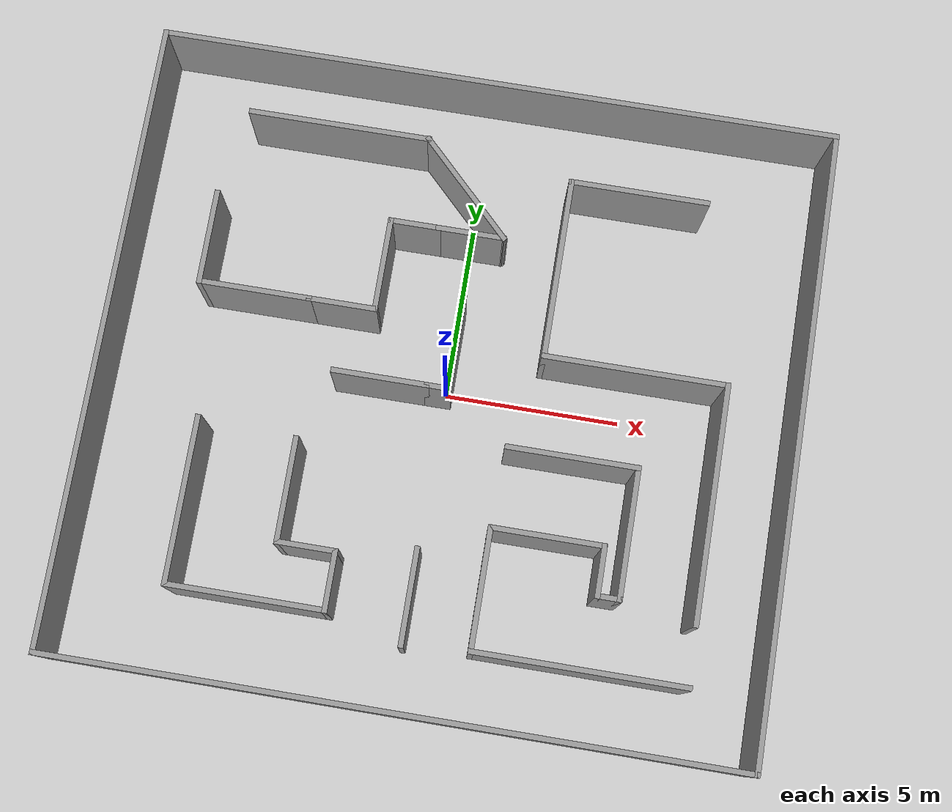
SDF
<sdf version="1.6">
 <world name="default">
  <light name="sun" type="directional">
   <pose>0 0 10 0 -0 0</pose>
   <diffuse>0.8 0.8 0.8 1</diffuse>
   <specular>0.2 0.2 0.2 1</specular>
   <attenuation>
    <range>1000</range>
    <constant>0.9</constant>
    <linear>0.01</linear>
    <quadratic>0.001</quadratic>
   </attenuation>
   <direction>-0.5 0.1 -0.9</direction>
   <spot><inner_angle>0</inner_angle><outer_angle>0</outer_angle><falloff>0</falloff></spot>
  </light>
  <model name="ground_plane">
   <static>1</static>
   <link name="link">
    <collision name="collision">
     <geometry><plane><normal>0 0 1</normal><size>100 100</size></plane></geometry>
     <surface>
      <contact><collide_bitmask>65535</collide_bitmask></contact>
      <friction><ode><mu>100</mu><mu2>50</mu2></ode></friction>
     </surface>
    </collision>
    <visual name="visual">
     <cast_shadows>0</cast_shadows>
     <geometry><plane><normal>0 0 1</normal><size>100 100</size></plane></geometry>
     <material>
      <script><uri>file://media/materials/scripts/gazebo.material</uri><name>Gazebo/Grey</name></script>
     </material>
    </visual>
   </link>
  </model>
  <gravity>0 0 -9.8</gravity>
  <magnetic_field>6e-06 2.3e-05 -4.2e-05</magnetic_field>
  <atmosphere type="adiabatic"/>
  <physics type="ode">
   <max_step_size>0.001</max_step_size>
   <real_time_factor>1</real_time_factor>
   <real_time_update_rate>1000</real_time_update_rate>
  </physics>
  <scene><ambient>0.4 0.4 0.4 1</ambient><background>0.7 0.7 0.7 1</background><shadows>1</shadows></scene>
  <spherical_coordinates>
   <surface_model>EARTH_WGS84</surface_model>
   <latitude_deg>0</latitude_deg>
   <longitude_deg>0</longitude_deg>
   <elevation>0</elevation>
   <heading_deg>0</heading_deg>
  </spherical_coordinates>
  <model name="testmap.world">
   <pose>0.092069 -0.22755 0 0 -0 0</pose>
   <link name="Wall_0">
    <collision name="Wall_0_Collision">
     <geometry><box><size>18 0.15 2.5</size></box></geometry>
     <pose>0 0 1.25 0 -0 0</pose>
    </collision>
    <visual name="Wall_0_Visual">
     <pose>0 0 1.25 0 -0 0</pose>
     <geometry><box><size>18 0.15 2.5</size></box></geometry>
     <material>
      <script><uri>file://media/materials/scripts/gazebo.material</uri><name>Gazebo/Grey</name></script>
      <ambient>1 1 1 1</ambient>
     </material>
     <meta><layer>0</layer></meta>
    </visual>
    <pose>-9.675 0 0 0 -0 -1.5708</pose>
   </link>
   <link name="Wall_10">
    <collision name="Wall_10_Collision">
     <geometry><box><size>1.75 0.15 2.5</size></box></geometry>
     <pose>0 0 1.25 0 -0 0</pose>
    </collision>
    <visual name="Wall_10_Visual">
     <pose>0 0 1.25 0 -0 0</pose>
     <geometry><box><size>1.75 0.15 2.5</size></box></geometry>
     <material>
      <script><uri>file://media/materials/scripts/gazebo.material</uri><name>Gazebo/Grey</name></script>
      <ambient>1 1 1 1</ambient>
     </material>
     <meta><layer>0</layer></meta>
    </visual>
    <pose>-3.03513 -4.97207 0 0 -0 3.14159</pose>
   </link>
   <link name="Wall_11">
    <collision name="Wall_11_Collision">
     <geometry><box><size>3 0.15 2.5</size></box></geometry>
     <pose>0 0 1.25 0 -0 0</pose>
    </collision>
    <visual name="Wall_11_Visual">
     <pose>0 0 1.25 0 -0 0</pose>
     <geometry><box><size>3 0.15 2.5</size></box></geometry>
     <material>
      <script><uri>file://media/materials/scripts/gazebo.material</uri><name>Gazebo/Grey</name></script>
      <ambient>1 1 1 1</ambient>
     </material>
     <meta><layer>0</layer></meta>
    </visual>
    <pose>-3.83513 -3.54707 0 0 -0 1.5708</pose>
   </link>
   <link name="Wall_13">
    <collision name="Wall_13_Collision">
     <geometry><box><size>5.25 0.15 2.5</size></box></geometry>
     <pose>0 0 1.25 0 -0 0</pose>
    </collision>
    <visual name="Wall_13_Visual">
     <pose>0 0 1.25 0 -0 0</pose>
     <geometry><box><size>5.25 0.15 2.5</size></box></geometry>
     <material>
      <script><uri>file://media/materials/scripts/gazebo.material</uri><name>Gazebo/Grey</name></script>
      <ambient>1 1 1 1</ambient>
     </material>
     <meta><layer>0</layer></meta>
    </visual>
    <pose>-4.2462 6.96333 0 0 -0 0</pose>
   </link>
   <link name="Wall_14">
    <collision name="Wall_14_Collision">
     <geometry><box><size>3.75 0.15 2.5</size></box></geometry>
     <pose>0 0 1.25 0 -0 0</pose>
    </collision>
    <visual name="Wall_14_Visual">
     <pose>0 0 1.25 0 -0 0</pose>
     <geometry><box><size>3.75 0.15 2.5</size></box></geometry>
     <material>
      <script><uri>file://media/materials/scripts/gazebo.material</uri><name>Gazebo/Grey</name></script>
      <ambient>1 1 1 1</ambient>
     </material>
     <meta><layer>0</layer></meta>
    </visual>
    <pose>-0.423409 5.69054 0 0 -0 -0.785398</pose>
   </link>
   <link name="Wall_15">
    <collision name="Wall_15_Collision">
     <geometry><box><size>2 0.15 2.5</size></box></geometry>
     <pose>0 0 1.25 0 -0 0</pose>
    </collision>
    <visual name="Wall_15_Visual">
     <pose>0 0 1.25 0 -0 0</pose>
     <geometry><box><size>2 0.15 2.5</size></box></geometry>
     <material>
      <script><uri>file://media/materials/scripts/gazebo.material</uri><name>Gazebo/Grey</name></script>
      <ambient>1 1 1 1</ambient>
     </material>
     <meta><layer>0</layer></meta>
    </visual>
    <pose>-0.075617 4.41775 0 0 -0 3.14159</pose>
   </link>
   <link name="Wall_16">
    <collision name="Wall_16_Collision">
     <geometry><box><size>1.5 0.15 2.5</size></box></geometry>
     <pose>0 0 1.25 0 -0 0</pose>
    </collision>
    <visual name="Wall_16_Visual">
     <pose>0 0 1.25 0 -0 0</pose>
     <geometry><box><size>1.5 0.15 2.5</size></box></geometry>
     <material>
      <script><uri>file://media/materials/scripts/gazebo.material</uri><name>Gazebo/Grey</name></script>
      <ambient>1 1 1 1</ambient>
     </material>
     <meta><layer>0</layer></meta>
    </visual>
    <pose>-1.67562 4.41775 0 0 -0 3.14159</pose>
   </link>
   <link name="Wall_17">
    <collision name="Wall_17_Collision">
     <geometry><box><size>2.75 0.15 2.5</size></box></geometry>
     <pose>0 0 1.25 0 -0 0</pose>
    </collision>
    <visual name="Wall_17_Visual">
     <pose>0 0 1.25 0 -0 0</pose>
     <geometry><box><size>2.75 0.15 2.5</size></box></geometry>
     <material>
      <script><uri>file://media/materials/scripts/gazebo.material</uri><name>Gazebo/Grey</name></script>
      <ambient>1 1 1 1</ambient>
     </material>
     <meta><layer>0</layer></meta>
    </visual>
    <pose>-2.35062 3.11775 0 0 -0 -1.5708</pose>
   </link>
   <link name="Wall_18">
    <collision name="Wall_18_Collision">
     <geometry><box><size>2 0.15 2.5</size></box></geometry>
     <pose>0 0 1.25 0 -0 0</pose>
    </collision>
    <visual name="Wall_18_Visual">
     <pose>0 0 1.25 0 -0 0</pose>
     <geometry><box><size>2 0.15 2.5</size></box></geometry>
     <material>
      <script><uri>file://media/materials/scripts/gazebo.material</uri><name>Gazebo/Grey</name></script>
      <ambient>1 1 1 1</ambient>
     </material>
     <meta><layer>0</layer></meta>
    </visual>
    <pose>-3.27562 1.81775 0 0 -0 3.14159</pose>
   </link>
   <link name="Wall_19">
    <collision name="Wall_19_Collision">
     <geometry><box><size>3.25 0.15 2.5</size></box></geometry>
     <pose>0 0 1.25 0 -0 0</pose>
    </collision>
    <visual name="Wall_19_Visual">
     <pose>0 0 1.25 0 -0 0</pose>
     <geometry><box><size>3.25 0.15 2.5</size></box></geometry>
     <material>
      <script><uri>file://media/materials/scripts/gazebo.material</uri><name>Gazebo/Grey</name></script>
      <ambient>1 1 1 1</ambient>
     </material>
     <meta><layer>0</layer></meta>
    </visual>
    <pose>-5.75062 1.81775 0 0 -0 3.14159</pose>
   </link>
   <link name="Wall_20">
    <collision name="Wall_20_Collision">
     <geometry><box><size>2.75 0.15 2.5</size></box></geometry>
     <pose>0 0 1.25 0 -0 0</pose>
    </collision>
    <visual name="Wall_20_Visual">
     <pose>0 0 1.25 0 -0 0</pose>
     <geometry><box><size>2.75 0.15 2.5</size></box></geometry>
     <material>
      <script><uri>file://media/materials/scripts/gazebo.material</uri><name>Gazebo/Grey</name></script>
      <ambient>1 1 1 1</ambient>
     </material>
     <meta><layer>0</layer></meta>
    </visual>
    <pose>-7.30062 3.11775 0 0 -0 1.5708</pose>
   </link>
   <link name="Wall_22">
    <collision name="Wall_22_Collision">
     <geometry><box><size>6 0.15 2.5</size></box></geometry>
     <pose>0 0 1.25 0 -0 0</pose>
    </collision>
    <visual name="Wall_22_Visual">
     <pose>0 0 1.25 0 -0 0</pose>
     <geometry><box><size>6 0.15 2.5</size></box></geometry>
     <material>
      <script><uri>file://media/materials/scripts/gazebo.material</uri><name>Gazebo/Grey</name></script>
      <ambient>1 1 1 1</ambient>
     </material>
     <meta><layer>0</layer></meta>
    </visual>
    <pose>4.70209 -7.00264 0 0 -0 3.14159</pose>
   </link>
   <link name="Wall_23">
    <collision name="Wall_23_Collision">
     <geometry><box><size>3.5 0.15 2.5</size></box></geometry>
     <pose>0 0 1.25 0 -0 0</pose>
    </collision>
    <visual name="Wall_23_Visual">
     <pose>0 0 1.25 0 -0 0</pose>
     <geometry><box><size>3.5 0.15 2.5</size></box></geometry>
     <material>
      <script><uri>file://media/materials/scripts/gazebo.material</uri><name>Gazebo/Grey</name></script>
      <ambient>1 1 1 1</ambient>
     </material>
     <meta><layer>0</layer></meta>
    </visual>
    <pose>1.77709 -5.32764 0 0 -0 1.5708</pose>
   </link>
   <link name="Wall_24">
    <collision name="Wall_24_Collision">
     <geometry><box><size>3.25 0.15 2.5</size></box></geometry>
     <pose>0 0 1.25 0 -0 0</pose>
    </collision>
    <visual name="Wall_24_Visual">
     <pose>0 0 1.25 0 -0 0</pose>
     <geometry><box><size>3.25 0.15 2.5</size></box></geometry>
     <material>
      <script><uri>file://media/materials/scripts/gazebo.material</uri><name>Gazebo/Grey</name></script>
      <ambient>1 1 1 1</ambient>
     </material>
     <meta><layer>0</layer></meta>
    </visual>
    <pose>3.32709 -3.65264 0 0 -0 0</pose>
   </link>
   <link name="Wall_25">
    <collision name="Wall_25_Collision">
     <geometry><box><size>1.5 0.15 2.5</size></box></geometry>
     <pose>0 0 1.25 0 -0 0</pose>
    </collision>
    <visual name="Wall_25_Visual">
     <pose>0 0 1.25 0 -0 0</pose>
     <geometry><box><size>1.5 0.15 2.5</size></box></geometry>
     <material>
      <script><uri>file://media/materials/scripts/gazebo.material</uri><name>Gazebo/Grey</name></script>
      <ambient>1 1 1 1</ambient>
     </material>
     <meta><layer>0</layer></meta>
    </visual>
    <pose>4.87709 -4.32764 0 0 -0 -1.5708</pose>
   </link>
   <link name="Wall_26">
    <collision name="Wall_26_Collision">
     <geometry><box><size>0.75 0.15 2.5</size></box></geometry>
     <pose>0 0 1.25 0 -0 0</pose>
    </collision>
    <visual name="Wall_26_Visual">
     <pose>0 0 1.25 0 -0 0</pose>
     <geometry><box><size>0.75 0.15 2.5</size></box></geometry>
     <material>
      <script><uri>file://media/materials/scripts/gazebo.material</uri><name>Gazebo/Grey</name></script>
      <ambient>1 1 1 1</ambient>
     </material>
     <meta><layer>0</layer></meta>
    </visual>
    <pose>5.17709 -5.00264 0 0 -0 0</pose>
   </link>
   <link name="Wall_27">
    <collision name="Wall_27_Collision">
     <geometry><box><size>3.75 0.15 2.5</size></box></geometry>
     <pose>0 0 1.25 0 -0 0</pose>
    </collision>
    <visual name="Wall_27_Visual">
     <pose>0 0 1.25 0 -0 0</pose>
     <geometry><box><size>3.75 0.15 2.5</size></box></geometry>
     <material>
      <script><uri>file://media/materials/scripts/gazebo.material</uri><name>Gazebo/Grey</name></script>
      <ambient>1 1 1 1</ambient>
     </material>
     <meta><layer>0</layer></meta>
    </visual>
    <pose>5.47709 -3.20264 0 0 -0 1.5708</pose>
   </link>
   <link name="Wall_28">
    <collision name="Wall_28_Collision">
     <geometry><box><size>3.75 0.15 2.5</size></box></geometry>
     <pose>0 0 1.25 0 -0 0</pose>
    </collision>
    <visual name="Wall_28_Visual">
     <pose>0 0 1.25 0 -0 0</pose>
     <geometry><box><size>3.75 0.15 2.5</size></box></geometry>
     <material>
      <script><uri>file://media/materials/scripts/gazebo.material</uri><name>Gazebo/Grey</name></script>
      <ambient>1 1 1 1</ambient>
     </material>
     <meta><layer>0</layer></meta>
    </visual>
    <pose>3.67709 -1.40264 0 0 -0 3.14159</pose>
   </link>
   <link name="Wall_3">
    <collision name="Wall_3_Collision">
     <geometry><box><size>19.5 0.15 2.5</size></box></geometry>
     <pose>0 0 1.25 0 -0 0</pose>
    </collision>
    <visual name="Wall_3_Visual">
     <pose>0 0 1.25 0 -0 0</pose>
     <geometry><box><size>19.5 0.15 2.5</size></box></geometry>
     <material>
      <script><uri>file://media/materials/scripts/gazebo.material</uri><name>Gazebo/Grey</name></script>
      <ambient>1 1 1 1</ambient>
     </material>
     <meta><layer>0</layer></meta>
    </visual>
    <pose>0 -8.925 0 0 -0 0</pose>
   </link>
   <link name="Wall_30">
    <collision name="Wall_30_Collision">
     <geometry><box><size>4 0.15 2.5</size></box></geometry>
     <pose>0 0 1.25 0 -0 0</pose>
    </collision>
    <visual name="Wall_30_Visual">
     <pose>0 0 1.25 0 -0 0</pose>
     <geometry><box><size>4 0.15 2.5</size></box></geometry>
     <material>
      <script><uri>file://media/materials/scripts/gazebo.material</uri><name>Gazebo/Grey</name></script>
      <ambient>1 1 1 1</ambient>
     </material>
     <meta><layer>0</layer></meta>
    </visual>
    <pose>4.40048 6.36529 0 0 -0 3.14159</pose>
   </link>
   <link name="Wall_31">
    <collision name="Wall_31_Collision">
     <geometry><box><size>5.25 0.15 2.5</size></box></geometry>
     <pose>0 0 1.25 0 -0 0</pose>
    </collision>
    <visual name="Wall_31_Visual">
     <pose>0 0 1.25 0 -0 0</pose>
     <geometry><box><size>5.25 0.15 2.5</size></box></geometry>
     <material>
      <script><uri>file://media/materials/scripts/gazebo.material</uri><name>Gazebo/Grey</name></script>
      <ambient>1 1 1 1</ambient>
     </material>
     <meta><layer>0</layer></meta>
    </visual>
    <pose>2.47548 3.81529 0 0 -0 -1.5708</pose>
   </link>
   <link name="Wall_32">
    <collision name="Wall_32_Collision">
     <geometry><box><size>5.25 0.15 2.5</size></box></geometry>
     <pose>0 0 1.25 0 -0 0</pose>
    </collision>
    <visual name="Wall_32_Visual">
     <pose>0 0 1.25 0 -0 0</pose>
     <geometry><box><size>5.25 0.15 2.5</size></box></geometry>
     <material>
      <script><uri>file://media/materials/scripts/gazebo.material</uri><name>Gazebo/Grey</name></script>
      <ambient>1 1 1 1</ambient>
     </material>
     <meta><layer>0</layer></meta>
    </visual>
    <pose>5.02548 1.26529 0 0 -0 0</pose>
   </link>
   <link name="Wall_33">
    <collision name="Wall_33_Collision">
     <geometry><box><size>6.75 0.15 2.5</size></box></geometry>
     <pose>0 0 1.25 0 -0 0</pose>
    </collision>
    <visual name="Wall_33_Visual">
     <pose>0 0 1.25 0 -0 0</pose>
     <geometry><box><size>6.75 0.15 2.5</size></box></geometry>
     <material>
      <script><uri>file://media/materials/scripts/gazebo.material</uri><name>Gazebo/Grey</name></script>
      <ambient>1 1 1 1</ambient>
     </material>
     <meta><layer>0</layer></meta>
    </visual>
    <pose>7.57548 -2.03471 0 0 -0 -1.5708</pose>
   </link>
   <link name="Wall_35">
    <collision name="Wall_35_Collision">
     <geometry><box><size>2.75 0.15 2.5</size></box></geometry>
     <pose>0 0 1.25 0 -0 0</pose>
    </collision>
    <visual name="Wall_35_Visual">
     <pose>0 0 1.25 0 -0 0</pose>
     <geometry><box><size>2.75 0.15 2.5</size></box></geometry>
     <material>
      <script><uri>file://media/materials/scripts/gazebo.material</uri><name>Gazebo/Grey</name></script>
      <ambient>1 1 1 1</ambient>
     </material>
     <meta><layer>0</layer></meta>
    </visual>
    <pose>-1.87279 -0.072421 0 0 -0 0</pose>
   </link>
   <link name="Wall_36">
    <collision name="Wall_36_Collision">
     <geometry><box><size>0.75 0.15 2.5</size></box></geometry>
     <pose>0 0 1.25 0 -0 0</pose>
    </collision>
    <visual name="Wall_36_Visual">
     <pose>0 0 1.25 0 -0 0</pose>
     <geometry><box><size>0.75 0.15 2.5</size></box></geometry>
     <material>
      <script><uri>file://media/materials/scripts/gazebo.material</uri><name>Gazebo/Grey</name></script>
      <ambient>1 1 1 1</ambient>
     </material>
     <meta><layer>0</layer></meta>
    </visual>
    <pose>-0.272789 -0.072421 0 0 -0 0</pose>
   </link>
   <link name="Wall_37">
    <collision name="Wall_37_Collision">
     <geometry><box><size>2.75 0.15 2.5</size></box></geometry>
     <pose>0 0 1.25 0 -0 0</pose>
    </collision>
    <visual name="Wall_37_Visual">
     <pose>0 0 1.25 0 -0 0</pose>
     <geometry><box><size>2.75 0.15 2.5</size></box></geometry>
     <material>
      <script><uri>file://media/materials/scripts/gazebo.material</uri><name>Gazebo/Grey</name></script>
      <ambient>1 1 1 1</ambient>
     </material>
     <meta><layer>0</layer></meta>
    </visual>
    <pose>0.027211 1.22758 0 0 -0 1.5708</pose>
   </link>
   <link name="Wall_39">
    <collision name="Wall_39_Collision">
     <geometry><box><size>2.75 0.15 2.5</size></box></geometry>
     <pose>0 0 1.25 0 -0 0</pose>
    </collision>
    <visual name="Wall_39_Visual">
     <pose>0 0 1.25 0 -0 0</pose>
     <geometry><box><size>2.75 0.15 2.5</size></box></geometry>
     <material>
      <script><uri>file://media/materials/scripts/gazebo.material</uri><name>Gazebo/Grey</name></script>
      <ambient>1 1 1 1</ambient>
     </material>
     <meta><layer>0</layer></meta>
    </visual>
    <pose>-0.077058 -5.84335 0 0 -0 1.5708</pose>
   </link>
   <link name="Wall_4">
    <collision name="Wall_4_Collision">
     <geometry><box><size>18 0.15 2.5</size></box></geometry>
     <pose>0 0 1.25 0 -0 0</pose>
    </collision>
    <visual name="Wall_4_Visual">
     <pose>0 0 1.25 0 -0 0</pose>
     <geometry><box><size>18 0.15 2.5</size></box></geometry>
     <material>
      <script><uri>file://media/materials/scripts/gazebo.material</uri><name>Gazebo/Grey</name></script>
      <ambient>1 1 1 1</ambient>
     </material>
     <meta><layer>0</layer></meta>
    </visual>
    <pose>9.675 0 0 0 -0 1.5708</pose>
   </link>
   <link name="Wall_5">
    <collision name="Wall_5_Collision">
     <geometry><box><size>19.5 0.15 2.5</size></box></geometry>
     <pose>0 0 1.25 0 -0 0</pose>
    </collision>
    <visual name="Wall_5_Visual">
     <pose>0 0 1.25 0 -0 0</pose>
     <geometry><box><size>19.5 0.15 2.5</size></box></geometry>
     <material>
      <script><uri>file://media/materials/scripts/gazebo.material</uri><name>Gazebo/Grey</name></script>
      <ambient>1 1 1 1</ambient>
     </material>
     <meta><layer>0</layer></meta>
    </visual>
    <pose>0 8.925 0 0 -0 3.14159</pose>
   </link>
   <link name="Wall_7">
    <collision name="Wall_7_Collision">
     <geometry><box><size>4.75 0.15 2.5</size></box></geometry>
     <pose>0 0 1.25 0 -0 0</pose>
    </collision>
    <visual name="Wall_7_Visual">
     <pose>0 0 1.25 0 -0 0</pose>
     <geometry><box><size>4.75 0.15 2.5</size></box></geometry>
     <material>
      <script><uri>file://media/materials/scripts/gazebo.material</uri><name>Gazebo/Grey</name></script>
      <ambient>1 1 1 1</ambient>
     </material>
     <meta><layer>0</layer></meta>
    </visual>
    <pose>-6.58513 -4.27207 0 0 -0 -1.5708</pose>
   </link>
   <link name="Wall_8">
    <collision name="Wall_8_Collision">
     <geometry><box><size>4.5 0.15 2.5</size></box></geometry>
     <pose>0 0 1.25 0 -0 0</pose>
    </collision>
    <visual name="Wall_8_Visual">
     <pose>0 0 1.25 0 -0 0</pose>
     <geometry><box><size>4.5 0.15 2.5</size></box></geometry>
     <material>
      <script><uri>file://media/materials/scripts/gazebo.material</uri><name>Gazebo/Grey</name></script>
      <ambient>1 1 1 1</ambient>
     </material>
     <meta><layer>0</layer></meta>
    </visual>
    <pose>-4.41013 -6.57207 0 0 -0 0</pose>
   </link>
   <link name="Wall_9">
    <collision name="Wall_9_Collision">
     <geometry><box><size>1.75 0.15 2.5</size></box></geometry>
     <pose>0 0 1.25 0 -0 0</pose>
    </collision>
    <visual name="Wall_9_Visual">
     <pose>0 0 1.25 0 -0 0</pose>
     <geometry><box><size>1.75 0.15 2.5</size></box></geometry>
     <material>
      <script><uri>file://media/materials/scripts/gazebo.material</uri><name>Gazebo/Grey</name></script>
      <ambient>1 1 1 1</ambient>
     </material>
     <meta><layer>0</layer></meta>
    </visual>
    <pose>-2.23513 -5.77207 0 0 -0 1.5708</pose>
   </link>
   <static>1</static>
  </model>
 </world>
</sdf>
